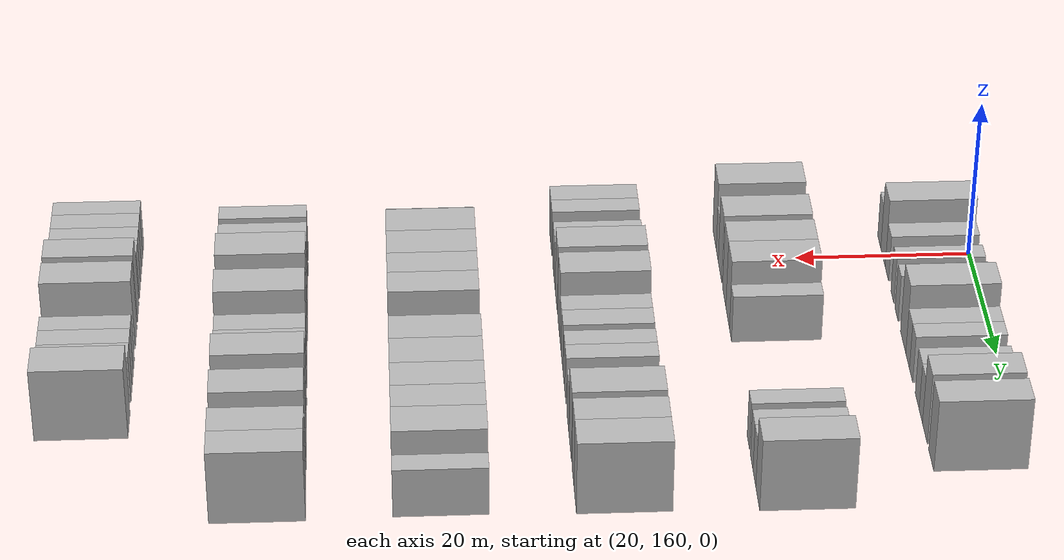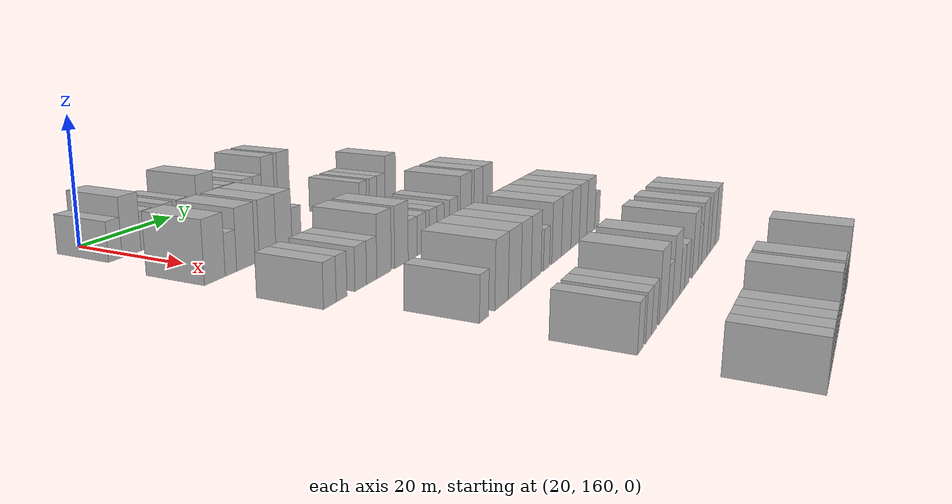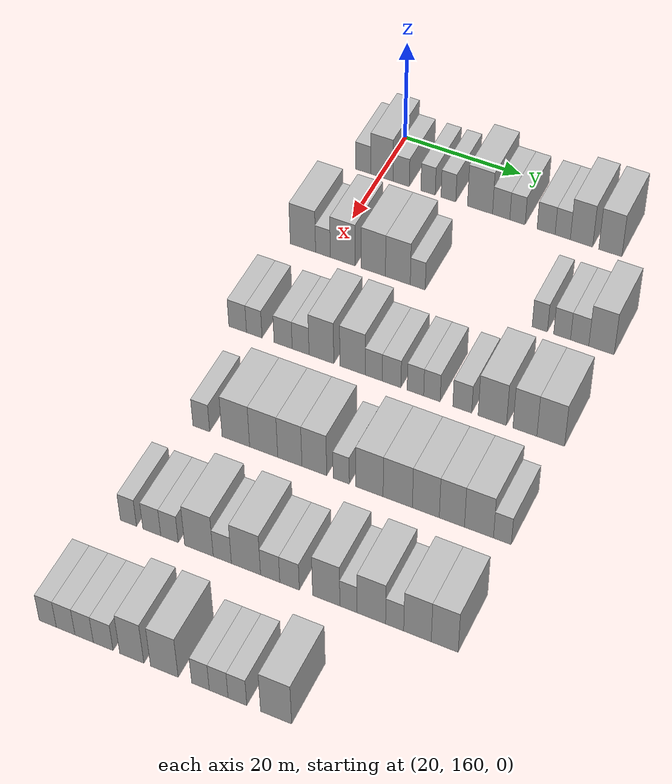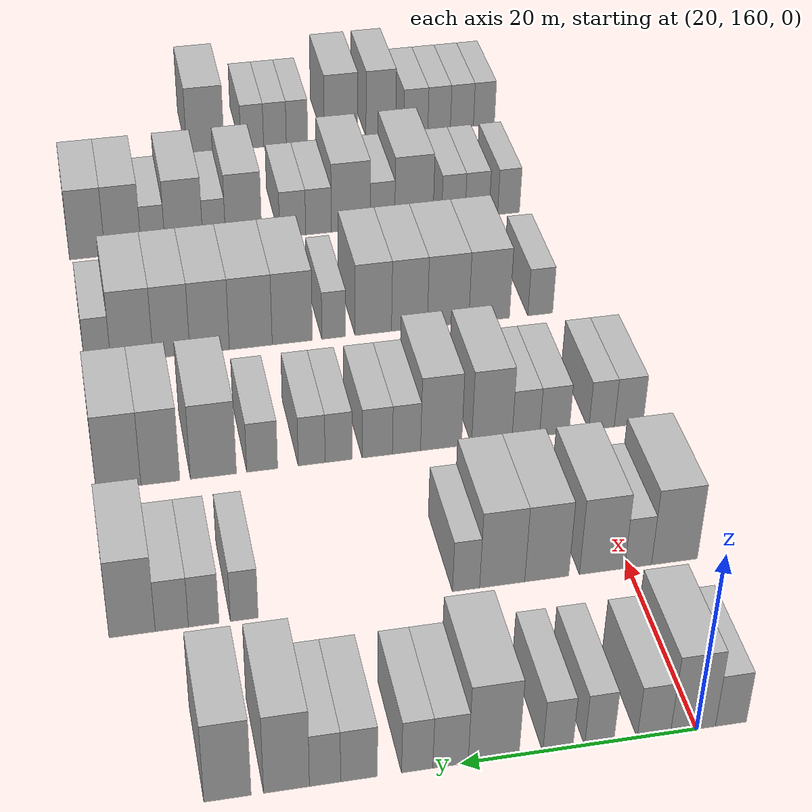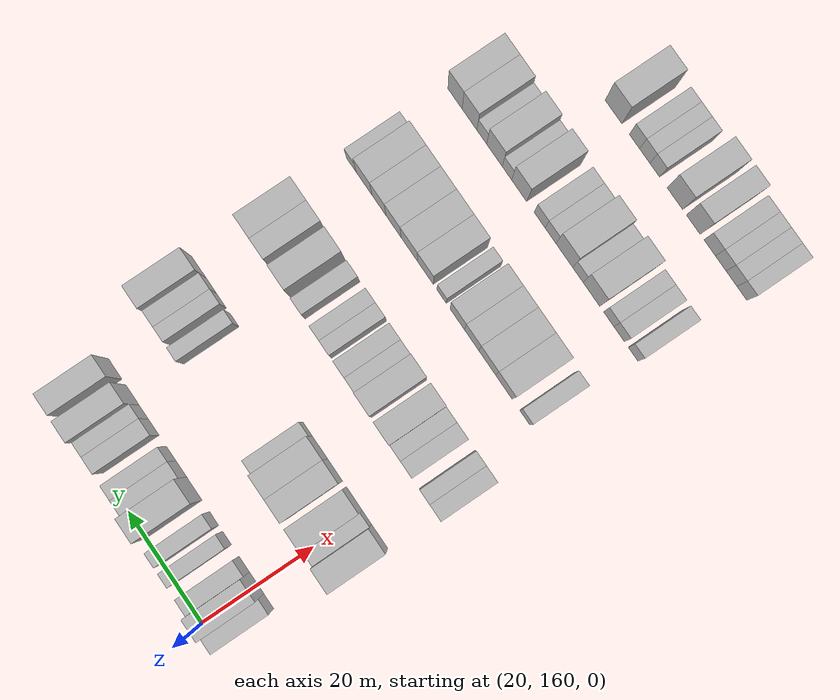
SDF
<sdf version="1.6">
 <world name="default">
  <model name="building_124">
   <static>1</static>
   <pose>25.0000 157.0940 0 0.000000 0.000000 0.000000</pose>
   <link name="link">
    <pose>0 0 3.00 0 0 0</pose>
    <collision name="collision"><geometry><box><size>10.0000 2.6790 6.0000</size></box></geometry></collision>
    <visual name="visual">
     <cast_shadows>0</cast_shadows>
     <geometry><box><size>10.0000 2.6790 6.0000</size></box></geometry>
     <material>
      <script>
       <uri>model://HANNAS_wall/materials/scripts</uri>
       <uri>model://HANNAS_wall/materials/textures</uri>
       <name>vrc/HANNAS_wall</name>
      </script>
     </material>
    </visual>
   </link>
  </model>
  <model name="building_125">
   <static>1</static>
   <pose>25.0000 160.3648 0 0.000000 0.000000 0.000000</pose>
   <link name="link">
    <pose>0 0 4.50 0 0 0</pose>
    <collision name="collision"><geometry><box><size>10.0000 3.8626 9.0000</size></box></geometry></collision>
    <visual name="visual">
     <cast_shadows>0</cast_shadows>
     <geometry><box><size>10.0000 3.8626 9.0000</size></box></geometry>
     <material>
      <script>
       <uri>model://HANNAS_wall/materials/scripts</uri>
       <uri>model://HANNAS_wall/materials/textures</uri>
       <name>vrc/HANNAS_wall</name>
      </script>
     </material>
    </visual>
   </link>
  </model>
  <model name="building_126">
   <static>1</static>
   <pose>25.0000 163.7186 0 0.000000 0.000000 0.000000</pose>
   <link name="link">
    <pose>0 0 3.00 0 0 0</pose>
    <collision name="collision"><geometry><box><size>10.0000 2.8452 6.0000</size></box></geometry></collision>
    <visual name="visual">
     <cast_shadows>0</cast_shadows>
     <geometry><box><size>10.0000 2.8452 6.0000</size></box></geometry>
     <material>
      <script>
       <uri>model://HANNAS_wall/materials/scripts</uri>
       <uri>model://HANNAS_wall/materials/textures</uri>
       <name>vrc/HANNAS_wall</name>
      </script>
     </material>
    </visual>
   </link>
  </model>
  <model name="building_127">
   <static>1</static>
   <pose>25.0000 168.3753 0 0.000000 0.000000 0.000000</pose>
   <link name="link">
    <pose>0 0 3.00 0 0 0</pose>
    <collision name="collision"><geometry><box><size>10.0000 2.4682 6.0000</size></box></geometry></collision>
    <visual name="visual">
     <cast_shadows>0</cast_shadows>
     <geometry><box><size>10.0000 2.4682 6.0000</size></box></geometry>
     <material>
      <script>
       <uri>model://HANNAS_wall/materials/scripts</uri>
       <uri>model://HANNAS_wall/materials/textures</uri>
       <name>vrc/HANNAS_wall</name>
      </script>
     </material>
    </visual>
   </link>
  </model>
  <model name="building_128">
   <static>1</static>
   <pose>25.0000 171.8741 0 0.000000 0.000000 0.000000</pose>
   <link name="link">
    <pose>0 0 3.00 0 0 0</pose>
    <collision name="collision"><geometry><box><size>10.0000 2.5295 6.0000</size></box></geometry></collision>
    <visual name="visual">
     <cast_shadows>0</cast_shadows>
     <geometry><box><size>10.0000 2.5295 6.0000</size></box></geometry>
     <material>
      <script>
       <uri>model://HANNAS_wall/materials/scripts</uri>
       <uri>model://HANNAS_wall/materials/textures</uri>
       <name>vrc/HANNAS_wall</name>
      </script>
     </material>
    </visual>
   </link>
  </model>
  <model name="building_129">
   <static>1</static>
   <pose>25.0000 177.2616 0 0.000000 0.000000 0.000000</pose>
   <link name="link">
    <pose>0 0 4.50 0 0 0</pose>
    <collision name="collision"><geometry><box><size>10.0000 4.2454 9.0000</size></box></geometry></collision>
    <visual name="visual">
     <cast_shadows>0</cast_shadows>
     <geometry><box><size>10.0000 4.2454 9.0000</size></box></geometry>
     <material>
      <script>
       <uri>model://HANNAS_wall/materials/scripts</uri>
       <uri>model://HANNAS_wall/materials/textures</uri>
       <name>vrc/HANNAS_wall</name>
      </script>
     </material>
    </visual>
   </link>
  </model>
  <model name="building_130">
   <static>1</static>
   <pose>25.0000 180.8461 0 0.000000 0.000000 0.000000</pose>
   <link name="link">
    <pose>0 0 3.00 0 0 0</pose>
    <collision name="collision"><geometry><box><size>10.0000 2.9236 6.0000</size></box></geometry></collision>
    <visual name="visual">
     <cast_shadows>0</cast_shadows>
     <geometry><box><size>10.0000 2.9236 6.0000</size></box></geometry>
     <material>
      <script>
       <uri>model://HANNAS_wall/materials/scripts</uri>
       <uri>model://HANNAS_wall/materials/textures</uri>
       <name>vrc/HANNAS_wall</name>
      </script>
     </material>
    </visual>
   </link>
  </model>
  <model name="building_131">
   <static>1</static>
   <pose>25.0000 183.5967 0 0.000000 0.000000 0.000000</pose>
   <link name="link">
    <pose>0 0 3.00 0 0 0</pose>
    <collision name="collision"><geometry><box><size>10.0000 2.5775 6.0000</size></box></geometry></collision>
    <visual name="visual">
     <cast_shadows>0</cast_shadows>
     <geometry><box><size>10.0000 2.5775 6.0000</size></box></geometry>
     <material>
      <script>
       <uri>model://HANNAS_wall/materials/scripts</uri>
       <uri>model://HANNAS_wall/materials/textures</uri>
       <name>vrc/HANNAS_wall</name>
      </script>
     </material>
    </visual>
   </link>
  </model>
  <model name="building_132">
   <static>1</static>
   <pose>25.0000 188.3840 0 0.000000 0.000000 0.000000</pose>
   <link name="link">
    <pose>0 0 3.00 0 0 0</pose>
    <collision name="collision"><geometry><box><size>10.0000 2.9971 6.0000</size></box></geometry></collision>
    <visual name="visual">
     <cast_shadows>0</cast_shadows>
     <geometry><box><size>10.0000 2.9971 6.0000</size></box></geometry>
     <material>
      <script>
       <uri>model://HANNAS_wall/materials/scripts</uri>
       <uri>model://HANNAS_wall/materials/textures</uri>
       <name>vrc/HANNAS_wall</name>
      </script>
     </material>
    </visual>
   </link>
  </model>
  <model name="building_133">
   <static>1</static>
   <pose>25.0000 191.1458 0 0.000000 0.000000 0.000000</pose>
   <link name="link">
    <pose>0 0 3.00 0 0 0</pose>
    <collision name="collision"><geometry><box><size>10.0000 2.5265 6.0000</size></box></geometry></collision>
    <visual name="visual">
     <cast_shadows>0</cast_shadows>
     <geometry><box><size>10.0000 2.5265 6.0000</size></box></geometry>
     <material>
      <script>
       <uri>model://HANNAS_wall/materials/scripts</uri>
       <uri>model://HANNAS_wall/materials/textures</uri>
       <name>vrc/HANNAS_wall</name>
      </script>
     </material>
    </visual>
   </link>
  </model>
  <model name="building_134">
   <static>1</static>
   <pose>25.0000 194.2601 0 0.000000 0.000000 0.000000</pose>
   <link name="link">
    <pose>0 0 4.50 0 0 0</pose>
    <collision name="collision"><geometry><box><size>10.0000 3.7020 9.0000</size></box></geometry></collision>
    <visual name="visual">
     <cast_shadows>0</cast_shadows>
     <geometry><box><size>10.0000 3.7020 9.0000</size></box></geometry>
     <material>
      <script>
       <uri>model://HANNAS_wall/materials/scripts</uri>
       <uri>model://HANNAS_wall/materials/textures</uri>
       <name>vrc/HANNAS_wall</name>
      </script>
     </material>
    </visual>
   </link>
  </model>
  <model name="building_135">
   <static>1</static>
   <pose>25.0000 199.0056 0 0.000000 0.000000 0.000000</pose>
   <link name="link">
    <pose>0 0 4.50 0 0 0</pose>
    <collision name="collision"><geometry><box><size>10.0000 3.7892 9.0000</size></box></geometry></collision>
    <visual name="visual">
     <cast_shadows>0</cast_shadows>
     <geometry><box><size>10.0000 3.7892 9.0000</size></box></geometry>
     <material>
      <script>
       <uri>model://HANNAS_wall/materials/scripts</uri>
       <uri>model://HANNAS_wall/materials/textures</uri>
       <name>vrc/HANNAS_wall</name>
      </script>
     </material>
    </visual>
   </link>
  </model>
  <model name="building_297">
   <static>1</static>
   <pose>44.0000 155.7396 0 0.000000 0.000000 0.000000</pose>
   <link name="link">
    <pose>0 0 4.50 0 0 0</pose>
    <collision name="collision"><geometry><box><size>10.0000 4.3315 9.0000</size></box></geometry></collision>
    <visual name="visual">
     <cast_shadows>0</cast_shadows>
     <geometry><box><size>10.0000 4.3315 9.0000</size></box></geometry>
     <material>
      <script>
       <uri>model://HANNAS_wall/materials/scripts</uri>
       <uri>model://HANNAS_wall/materials/textures</uri>
       <name>vrc/HANNAS_wall</name>
      </script>
     </material>
    </visual>
   </link>
  </model>
  <model name="building_298">
   <static>1</static>
   <pose>44.0000 159.1583 0 0.000000 0.000000 0.000000</pose>
   <link name="link">
    <pose>0 0 3.00 0 0 0</pose>
    <collision name="collision"><geometry><box><size>10.0000 2.5058 6.0000</size></box></geometry></collision>
    <visual name="visual">
     <cast_shadows>0</cast_shadows>
     <geometry><box><size>10.0000 2.5058 6.0000</size></box></geometry>
     <material>
      <script>
       <uri>model://HANNAS_wall/materials/scripts</uri>
       <uri>model://HANNAS_wall/materials/textures</uri>
       <name>vrc/HANNAS_wall</name>
      </script>
     </material>
    </visual>
   </link>
  </model>
  <model name="building_299">
   <static>1</static>
   <pose>44.0000 162.5243 0 0.000000 0.000000 0.000000</pose>
   <link name="link">
    <pose>0 0 4.50 0 0 0</pose>
    <collision name="collision"><geometry><box><size>10.0000 4.2263 9.0000</size></box></geometry></collision>
    <visual name="visual">
     <cast_shadows>0</cast_shadows>
     <geometry><box><size>10.0000 4.2263 9.0000</size></box></geometry>
     <material>
      <script>
       <uri>model://HANNAS_wall/materials/scripts</uri>
       <uri>model://HANNAS_wall/materials/textures</uri>
       <name>vrc/HANNAS_wall</name>
      </script>
     </material>
    </visual>
   </link>
  </model>
  <model name="building_300">
   <static>1</static>
   <pose>44.0000 167.6697 0 0.000000 0.000000 0.000000</pose>
   <link name="link">
    <pose>0 0 4.50 0 0 0</pose>
    <collision name="collision"><geometry><box><size>10.0000 4.0644 9.0000</size></box></geometry></collision>
    <visual name="visual">
     <cast_shadows>0</cast_shadows>
     <geometry><box><size>10.0000 4.0644 9.0000</size></box></geometry>
     <material>
      <script>
       <uri>model://HANNAS_wall/materials/scripts</uri>
       <uri>model://HANNAS_wall/materials/textures</uri>
       <name>vrc/HANNAS_wall</name>
      </script>
     </material>
    </visual>
   </link>
  </model>
  <model name="building_301">
   <static>1</static>
   <pose>44.0000 171.7736 0 0.000000 0.000000 0.000000</pose>
   <link name="link">
    <pose>0 0 4.50 0 0 0</pose>
    <collision name="collision"><geometry><box><size>10.0000 4.1435 9.0000</size></box></geometry></collision>
    <visual name="visual">
     <cast_shadows>0</cast_shadows>
     <geometry><box><size>10.0000 4.1435 9.0000</size></box></geometry>
     <material>
      <script>
       <uri>model://HANNAS_wall/materials/scripts</uri>
       <uri>model://HANNAS_wall/materials/textures</uri>
       <name>vrc/HANNAS_wall</name>
      </script>
     </material>
    </visual>
   </link>
  </model>
  <model name="building_302">
   <static>1</static>
   <pose>44.0000 175.0866 0 0.000000 0.000000 0.000000</pose>
   <link name="link">
    <pose>0 0 3.00 0 0 0</pose>
    <collision name="collision"><geometry><box><size>10.0000 2.4825 6.0000</size></box></geometry></collision>
    <visual name="visual">
     <cast_shadows>0</cast_shadows>
     <geometry><box><size>10.0000 2.4825 6.0000</size></box></geometry>
     <material>
      <script>
       <uri>model://HANNAS_wall/materials/scripts</uri>
       <uri>model://HANNAS_wall/materials/textures</uri>
       <name>vrc/HANNAS_wall</name>
      </script>
     </material>
    </visual>
   </link>
  </model>
  <model name="building_303">
   <static>1</static>
   <pose>44.0000 195.0026 0 0.000000 0.000000 0.000000</pose>
   <link name="link">
    <pose>0 0 3.00 0 0 0</pose>
    <collision name="collision"><geometry><box><size>10.0000 2.4498 6.0000</size></box></geometry></collision>
    <visual name="visual">
     <cast_shadows>0</cast_shadows>
     <geometry><box><size>10.0000 2.4498 6.0000</size></box></geometry>
     <material>
      <script>
       <uri>model://HANNAS_wall/materials/scripts</uri>
       <uri>model://HANNAS_wall/materials/textures</uri>
       <name>vrc/HANNAS_wall</name>
      </script>
     </material>
    </visual>
   </link>
  </model>
  <model name="building_304">
   <static>1</static>
   <pose>44.0000 198.5669 0 0.000000 0.000000 0.000000</pose>
   <link name="link">
    <pose>0 0 3.00 0 0 0</pose>
    <collision name="collision"><geometry><box><size>10.0000 2.6788 6.0000</size></box></geometry></collision>
    <visual name="visual">
     <cast_shadows>0</cast_shadows>
     <geometry><box><size>10.0000 2.6788 6.0000</size></box></geometry>
     <material>
      <script>
       <uri>model://HANNAS_wall/materials/scripts</uri>
       <uri>model://HANNAS_wall/materials/textures</uri>
       <name>vrc/HANNAS_wall</name>
      </script>
     </material>
    </visual>
   </link>
  </model>
  <model name="building_305">
   <static>1</static>
   <pose>44.0000 201.3552 0 0.000000 0.000000 0.000000</pose>
   <link name="link">
    <pose>0 0 3.00 0 0 0</pose>
    <collision name="collision"><geometry><box><size>10.0000 2.8977 6.0000</size></box></geometry></collision>
    <visual name="visual">
     <cast_shadows>0</cast_shadows>
     <geometry><box><size>10.0000 2.8977 6.0000</size></box></geometry>
     <material>
      <script>
       <uri>model://HANNAS_wall/materials/scripts</uri>
       <uri>model://HANNAS_wall/materials/textures</uri>
       <name>vrc/HANNAS_wall</name>
      </script>
     </material>
    </visual>
   </link>
  </model>
  <model name="building_306">
   <static>1</static>
   <pose>44.0000 204.8110 0 0.000000 0.000000 0.000000</pose>
   <link name="link">
    <pose>0 0 4.50 0 0 0</pose>
    <collision name="collision"><geometry><box><size>10.0000 4.0140 9.0000</size></box></geometry></collision>
    <visual name="visual">
     <cast_shadows>0</cast_shadows>
     <geometry><box><size>10.0000 4.0140 9.0000</size></box></geometry>
     <material>
      <script>
       <uri>model://HANNAS_wall/materials/scripts</uri>
       <uri>model://HANNAS_wall/materials/textures</uri>
       <name>vrc/HANNAS_wall</name>
      </script>
     </material>
    </visual>
   </link>
  </model>
  <model name="building_469">
   <static>1</static>
   <pose>63.0000 154.2021 0 0.000000 0.000000 0.000000</pose>
   <link name="link">
    <pose>0 0 3.00 0 0 0</pose>
    <collision name="collision"><geometry><box><size>10.0000 2.9419 6.0000</size></box></geometry></collision>
    <visual name="visual">
     <cast_shadows>0</cast_shadows>
     <geometry><box><size>10.0000 2.9419 6.0000</size></box></geometry>
     <material>
      <script>
       <uri>model://HANNAS_wall/materials/scripts</uri>
       <uri>model://HANNAS_wall/materials/textures</uri>
       <name>vrc/HANNAS_wall</name>
      </script>
     </material>
    </visual>
   </link>
  </model>
  <model name="building_470">
   <static>1</static>
   <pose>63.0000 156.9683 0 0.000000 0.000000 0.000000</pose>
   <link name="link">
    <pose>0 0 3.00 0 0 0</pose>
    <collision name="collision"><geometry><box><size>10.0000 2.5905 6.0000</size></box></geometry></collision>
    <visual name="visual">
     <cast_shadows>0</cast_shadows>
     <geometry><box><size>10.0000 2.5905 6.0000</size></box></geometry>
     <material>
      <script>
       <uri>model://HANNAS_wall/materials/scripts</uri>
       <uri>model://HANNAS_wall/materials/textures</uri>
       <name>vrc/HANNAS_wall</name>
      </script>
     </material>
    </visual>
   </link>
  </model>
  <model name="building_471">
   <static>1</static>
   <pose>63.0000 161.7582 0 0.000000 0.000000 0.000000</pose>
   <link name="link">
    <pose>0 0 3.00 0 0 0</pose>
    <collision name="collision"><geometry><box><size>10.0000 2.9892 6.0000</size></box></geometry></collision>
    <visual name="visual">
     <cast_shadows>0</cast_shadows>
     <geometry><box><size>10.0000 2.9892 6.0000</size></box></geometry>
     <material>
      <script>
       <uri>model://HANNAS_wall/materials/scripts</uri>
       <uri>model://HANNAS_wall/materials/textures</uri>
       <name>vrc/HANNAS_wall</name>
      </script>
     </material>
    </visual>
   </link>
  </model>
  <model name="building_472">
   <static>1</static>
   <pose>63.0000 164.6379 0 0.000000 0.000000 0.000000</pose>
   <link name="link">
    <pose>0 0 3.00 0 0 0</pose>
    <collision name="collision"><geometry><box><size>10.0000 2.7702 6.0000</size></box></geometry></collision>
    <visual name="visual">
     <cast_shadows>0</cast_shadows>
     <geometry><box><size>10.0000 2.7702 6.0000</size></box></geometry>
     <material>
      <script>
       <uri>model://HANNAS_wall/materials/scripts</uri>
       <uri>model://HANNAS_wall/materials/textures</uri>
       <name>vrc/HANNAS_wall</name>
      </script>
     </material>
    </visual>
   </link>
  </model>
  <model name="building_473">
   <static>1</static>
   <pose>63.0000 168.0458 0 0.000000 0.000000 0.000000</pose>
   <link name="link">
    <pose>0 0 4.50 0 0 0</pose>
    <collision name="collision"><geometry><box><size>10.0000 4.0457 9.0000</size></box></geometry></collision>
    <visual name="visual">
     <cast_shadows>0</cast_shadows>
     <geometry><box><size>10.0000 4.0457 9.0000</size></box></geometry>
     <material>
      <script>
       <uri>model://HANNAS_wall/materials/scripts</uri>
       <uri>model://HANNAS_wall/materials/textures</uri>
       <name>vrc/HANNAS_wall</name>
      </script>
     </material>
    </visual>
   </link>
  </model>
  <model name="building_474">
   <static>1</static>
   <pose>63.0000 173.1071 0 0.000000 0.000000 0.000000</pose>
   <link name="link">
    <pose>0 0 4.50 0 0 0</pose>
    <collision name="collision"><geometry><box><size>10.0000 4.0769 9.0000</size></box></geometry></collision>
    <visual name="visual">
     <cast_shadows>0</cast_shadows>
     <geometry><box><size>10.0000 4.0769 9.0000</size></box></geometry>
     <material>
      <script>
       <uri>model://HANNAS_wall/materials/scripts</uri>
       <uri>model://HANNAS_wall/materials/textures</uri>
       <name>vrc/HANNAS_wall</name>
      </script>
     </material>
    </visual>
   </link>
  </model>
  <model name="building_475">
   <static>1</static>
   <pose>63.0000 176.5319 0 0.000000 0.000000 0.000000</pose>
   <link name="link">
    <pose>0 0 3.00 0 0 0</pose>
    <collision name="collision"><geometry><box><size>10.0000 2.7725 6.0000</size></box></geometry></collision>
    <visual name="visual">
     <cast_shadows>0</cast_shadows>
     <geometry><box><size>10.0000 2.7725 6.0000</size></box></geometry>
     <material>
      <script>
       <uri>model://HANNAS_wall/materials/scripts</uri>
       <uri>model://HANNAS_wall/materials/textures</uri>
       <name>vrc/HANNAS_wall</name>
      </script>
     </material>
    </visual>
   </link>
  </model>
  <model name="building_476">
   <static>1</static>
   <pose>63.0000 179.4062 0 0.000000 0.000000 0.000000</pose>
   <link name="link">
    <pose>0 0 3.00 0 0 0</pose>
    <collision name="collision"><geometry><box><size>10.0000 2.9761 6.0000</size></box></geometry></collision>
    <visual name="visual">
     <cast_shadows>0</cast_shadows>
     <geometry><box><size>10.0000 2.9761 6.0000</size></box></geometry>
     <material>
      <script>
       <uri>model://HANNAS_wall/materials/scripts</uri>
       <uri>model://HANNAS_wall/materials/textures</uri>
       <name>vrc/HANNAS_wall</name>
      </script>
     </material>
    </visual>
   </link>
  </model>
  <model name="building_477">
   <static>1</static>
   <pose>63.0000 183.2064 0 0.000000 0.000000 0.000000</pose>
   <link name="link">
    <pose>0 0 3.00 0 0 0</pose>
    <collision name="collision"><geometry><box><size>10.0000 2.6243 6.0000</size></box></geometry></collision>
    <visual name="visual">
     <cast_shadows>0</cast_shadows>
     <geometry><box><size>10.0000 2.6243 6.0000</size></box></geometry>
     <material>
      <script>
       <uri>model://HANNAS_wall/materials/scripts</uri>
       <uri>model://HANNAS_wall/materials/textures</uri>
       <name>vrc/HANNAS_wall</name>
      </script>
     </material>
    </visual>
   </link>
  </model>
  <model name="building_478">
   <static>1</static>
   <pose>63.0000 185.8227 0 0.000000 0.000000 0.000000</pose>
   <link name="link">
    <pose>0 0 3.00 0 0 0</pose>
    <collision name="collision"><geometry><box><size>10.0000 2.6082 6.0000</size></box></geometry></collision>
    <visual name="visual">
     <cast_shadows>0</cast_shadows>
     <geometry><box><size>10.0000 2.6082 6.0000</size></box></geometry>
     <material>
      <script>
       <uri>model://HANNAS_wall/materials/scripts</uri>
       <uri>model://HANNAS_wall/materials/textures</uri>
       <name>vrc/HANNAS_wall</name>
      </script>
     </material>
    </visual>
   </link>
  </model>
  <model name="building_479">
   <static>1</static>
   <pose>63.0000 190.6145 0 0.000000 0.000000 0.000000</pose>
   <link name="link">
    <pose>0 0 3.00 0 0 0</pose>
    <collision name="collision"><geometry><box><size>10.0000 2.9754 6.0000</size></box></geometry></collision>
    <visual name="visual">
     <cast_shadows>0</cast_shadows>
     <geometry><box><size>10.0000 2.9754 6.0000</size></box></geometry>
     <material>
      <script>
       <uri>model://HANNAS_wall/materials/scripts</uri>
       <uri>model://HANNAS_wall/materials/textures</uri>
       <name>vrc/HANNAS_wall</name>
      </script>
     </material>
    </visual>
   </link>
  </model>
  <model name="building_480">
   <static>1</static>
   <pose>63.0000 195.3087 0 0.000000 0.000000 0.000000</pose>
   <link name="link">
    <pose>0 0 4.50 0 0 0</pose>
    <collision name="collision"><geometry><box><size>10.0000 4.4129 9.0000</size></box></geometry></collision>
    <visual name="visual">
     <cast_shadows>0</cast_shadows>
     <geometry><box><size>10.0000 4.4129 9.0000</size></box></geometry>
     <material>
      <script>
       <uri>model://HANNAS_wall/materials/scripts</uri>
       <uri>model://HANNAS_wall/materials/textures</uri>
       <name>vrc/HANNAS_wall</name>
      </script>
     </material>
    </visual>
   </link>
  </model>
  <model name="building_481">
   <static>1</static>
   <pose>63.0000 200.3666 0 0.000000 0.000000 0.000000</pose>
   <link name="link">
    <pose>0 0 4.50 0 0 0</pose>
    <collision name="collision"><geometry><box><size>10.0000 3.7028 9.0000</size></box></geometry></collision>
    <visual name="visual">
     <cast_shadows>0</cast_shadows>
     <geometry><box><size>10.0000 3.7028 9.0000</size></box></geometry>
     <material>
      <script>
       <uri>model://HANNAS_wall/materials/scripts</uri>
       <uri>model://HANNAS_wall/materials/textures</uri>
       <name>vrc/HANNAS_wall</name>
      </script>
     </material>
    </visual>
   </link>
  </model>
  <model name="building_482">
   <static>1</static>
   <pose>63.0000 204.3423 0 0.000000 0.000000 0.000000</pose>
   <link name="link">
    <pose>0 0 4.50 0 0 0</pose>
    <collision name="collision"><geometry><box><size>10.0000 4.2485 9.0000</size></box></geometry></collision>
    <visual name="visual">
     <cast_shadows>0</cast_shadows>
     <geometry><box><size>10.0000 4.2485 9.0000</size></box></geometry>
     <material>
      <script>
       <uri>model://HANNAS_wall/materials/scripts</uri>
       <uri>model://HANNAS_wall/materials/textures</uri>
       <name>vrc/HANNAS_wall</name>
      </script>
     </material>
    </visual>
   </link>
  </model>
  <model name="building_628">
   <static>1</static>
   <pose>82.0000 158.0994 0 0.000000 0.000000 0.000000</pose>
   <link name="link">
    <pose>0 0 3.00 0 0 0</pose>
    <collision name="collision"><geometry><box><size>10.0000 2.7022 6.0000</size></box></geometry></collision>
    <visual name="visual">
     <cast_shadows>0</cast_shadows>
     <geometry><box><size>10.0000 2.7022 6.0000</size></box></geometry>
     <material>
      <script>
       <uri>model://HANNAS_wall/materials/scripts</uri>
       <uri>model://HANNAS_wall/materials/textures</uri>
       <name>vrc/HANNAS_wall</name>
      </script>
     </material>
    </visual>
   </link>
  </model>
  <model name="building_629">
   <static>1</static>
   <pose>82.0000 163.6558 0 0.000000 0.000000 0.000000</pose>
   <link name="link">
    <pose>0 0 4.50 0 0 0</pose>
    <collision name="collision"><geometry><box><size>10.0000 4.4106 9.0000</size></box></geometry></collision>
    <visual name="visual">
     <cast_shadows>0</cast_shadows>
     <geometry><box><size>10.0000 4.4106 9.0000</size></box></geometry>
     <material>
      <script>
       <uri>model://HANNAS_wall/materials/scripts</uri>
       <uri>model://HANNAS_wall/materials/textures</uri>
       <name>vrc/HANNAS_wall</name>
      </script>
     </material>
    </visual>
   </link>
  </model>
  <model name="building_630">
   <static>1</static>
   <pose>82.0000 168.0950 0 0.000000 0.000000 0.000000</pose>
   <link name="link">
    <pose>0 0 4.50 0 0 0</pose>
    <collision name="collision"><geometry><box><size>10.0000 4.4678 9.0000</size></box></geometry></collision>
    <visual name="visual">
     <cast_shadows>0</cast_shadows>
     <geometry><box><size>10.0000 4.4678 9.0000</size></box></geometry>
     <material>
      <script>
       <uri>model://HANNAS_wall/materials/scripts</uri>
       <uri>model://HANNAS_wall/materials/textures</uri>
       <name>vrc/HANNAS_wall</name>
      </script>
     </material>
    </visual>
   </link>
  </model>
  <model name="building_631">
   <static>1</static>
   <pose>82.0000 172.2411 0 0.000000 0.000000 0.000000</pose>
   <link name="link">
    <pose>0 0 4.50 0 0 0</pose>
    <collision name="collision"><geometry><box><size>10.0000 3.8244 9.0000</size></box></geometry></collision>
    <visual name="visual">
     <cast_shadows>0</cast_shadows>
     <geometry><box><size>10.0000 3.8244 9.0000</size></box></geometry>
     <material>
      <script>
       <uri>model://HANNAS_wall/materials/scripts</uri>
       <uri>model://HANNAS_wall/materials/textures</uri>
       <name>vrc/HANNAS_wall</name>
      </script>
     </material>
    </visual>
   </link>
  </model>
  <model name="building_632">
   <static>1</static>
   <pose>82.0000 176.0911 0 0.000000 0.000000 0.000000</pose>
   <link name="link">
    <pose>0 0 4.50 0 0 0</pose>
    <collision name="collision"><geometry><box><size>10.0000 3.8755 9.0000</size></box></geometry></collision>
    <visual name="visual">
     <cast_shadows>0</cast_shadows>
     <geometry><box><size>10.0000 3.8755 9.0000</size></box></geometry>
     <material>
      <script>
       <uri>model://HANNAS_wall/materials/scripts</uri>
       <uri>model://HANNAS_wall/materials/textures</uri>
       <name>vrc/HANNAS_wall</name>
      </script>
     </material>
    </visual>
   </link>
  </model>
  <model name="building_633">
   <static>1</static>
   <pose>82.0000 180.2883 0 0.000000 0.000000 0.000000</pose>
   <link name="link">
    <pose>0 0 3.00 0 0 0</pose>
    <collision name="collision"><geometry><box><size>10.0000 2.5191 6.0000</size></box></geometry></collision>
    <visual name="visual">
     <cast_shadows>0</cast_shadows>
     <geometry><box><size>10.0000 2.5191 6.0000</size></box></geometry>
     <material>
      <script>
       <uri>model://HANNAS_wall/materials/scripts</uri>
       <uri>model://HANNAS_wall/materials/textures</uri>
       <name>vrc/HANNAS_wall</name>
      </script>
     </material>
    </visual>
   </link>
  </model>
  <model name="building_634">
   <static>1</static>
   <pose>82.0000 184.6544 0 0.000000 0.000000 0.000000</pose>
   <link name="link">
    <pose>0 0 4.50 0 0 0</pose>
    <collision name="collision"><geometry><box><size>10.0000 4.2131 9.0000</size></box></geometry></collision>
    <visual name="visual">
     <cast_shadows>0</cast_shadows>
     <geometry><box><size>10.0000 4.2131 9.0000</size></box></geometry>
     <material>
      <script>
       <uri>model://HANNAS_wall/materials/scripts</uri>
       <uri>model://HANNAS_wall/materials/textures</uri>
       <name>vrc/HANNAS_wall</name>
      </script>
     </material>
    </visual>
   </link>
  </model>
  <model name="building_635">
   <static>1</static>
   <pose>82.0000 189.0002 0 0.000000 0.000000 0.000000</pose>
   <link name="link">
    <pose>0 0 4.50 0 0 0</pose>
    <collision name="collision"><geometry><box><size>10.0000 4.4784 9.0000</size></box></geometry></collision>
    <visual name="visual">
     <cast_shadows>0</cast_shadows>
     <geometry><box><size>10.0000 4.4784 9.0000</size></box></geometry>
     <material>
      <script>
       <uri>model://HANNAS_wall/materials/scripts</uri>
       <uri>model://HANNAS_wall/materials/textures</uri>
       <name>vrc/HANNAS_wall</name>
      </script>
     </material>
    </visual>
   </link>
  </model>
  <model name="building_636">
   <static>1</static>
   <pose>82.0000 193.2841 0 0.000000 0.000000 0.000000</pose>
   <link name="link">
    <pose>0 0 4.50 0 0 0</pose>
    <collision name="collision"><geometry><box><size>10.0000 4.0894 9.0000</size></box></geometry></collision>
    <visual name="visual">
     <cast_shadows>0</cast_shadows>
     <geometry><box><size>10.0000 4.0894 9.0000</size></box></geometry>
     <material>
      <script>
       <uri>model://HANNAS_wall/materials/scripts</uri>
       <uri>model://HANNAS_wall/materials/textures</uri>
       <name>vrc/HANNAS_wall</name>
      </script>
     </material>
    </visual>
   </link>
  </model>
  <model name="building_637">
   <static>1</static>
   <pose>82.0000 197.2275 0 0.000000 0.000000 0.000000</pose>
   <link name="link">
    <pose>0 0 4.50 0 0 0</pose>
    <collision name="collision"><geometry><box><size>10.0000 3.7975 9.0000</size></box></geometry></collision>
    <visual name="visual">
     <cast_shadows>0</cast_shadows>
     <geometry><box><size>10.0000 3.7975 9.0000</size></box></geometry>
     <material>
      <script>
       <uri>model://HANNAS_wall/materials/scripts</uri>
       <uri>model://HANNAS_wall/materials/textures</uri>
       <name>vrc/HANNAS_wall</name>
      </script>
     </material>
    </visual>
   </link>
  </model>
  <model name="building_638">
   <static>1</static>
   <pose>82.0000 201.2980 0 0.000000 0.000000 0.000000</pose>
   <link name="link">
    <pose>0 0 4.50 0 0 0</pose>
    <collision name="collision"><geometry><box><size>10.0000 4.3434 9.0000</size></box></geometry></collision>
    <visual name="visual">
     <cast_shadows>0</cast_shadows>
     <geometry><box><size>10.0000 4.3434 9.0000</size></box></geometry>
     <material>
      <script>
       <uri>model://HANNAS_wall/materials/scripts</uri>
       <uri>model://HANNAS_wall/materials/textures</uri>
       <name>vrc/HANNAS_wall</name>
      </script>
     </material>
    </visual>
   </link>
  </model>
  <model name="building_639">
   <static>1</static>
   <pose>82.0000 204.8005 0 0.000000 0.000000 0.000000</pose>
   <link name="link">
    <pose>0 0 3.00 0 0 0</pose>
    <collision name="collision"><geometry><box><size>10.0000 2.6615 6.0000</size></box></geometry></collision>
    <visual name="visual">
     <cast_shadows>0</cast_shadows>
     <geometry><box><size>10.0000 2.6615 6.0000</size></box></geometry>
     <material>
      <script>
       <uri>model://HANNAS_wall/materials/scripts</uri>
       <uri>model://HANNAS_wall/materials/textures</uri>
       <name>vrc/HANNAS_wall</name>
      </script>
     </material>
    </visual>
   </link>
  </model>
  <model name="building_788">
   <static>1</static>
   <pose>101.0000 156.7307 0 0.000000 0.000000 0.000000</pose>
   <link name="link">
    <pose>0 0 3.00 0 0 0</pose>
    <collision name="collision"><geometry><box><size>10.0000 2.5454 6.0000</size></box></geometry></collision>
    <visual name="visual">
     <cast_shadows>0</cast_shadows>
     <geometry><box><size>10.0000 2.5454 6.0000</size></box></geometry>
     <material>
      <script>
       <uri>model://HANNAS_wall/materials/scripts</uri>
       <uri>model://HANNAS_wall/materials/textures</uri>
       <name>vrc/HANNAS_wall</name>
      </script>
     </material>
    </visual>
   </link>
  </model>
  <model name="building_789">
   <static>1</static>
   <pose>101.0000 160.4040 0 0.000000 0.000000 0.000000</pose>
   <link name="link">
    <pose>0 0 3.00 0 0 0</pose>
    <collision name="collision"><geometry><box><size>10.0000 2.8012 6.0000</size></box></geometry></collision>
    <visual name="visual">
     <cast_shadows>0</cast_shadows>
     <geometry><box><size>10.0000 2.8012 6.0000</size></box></geometry>
     <material>
      <script>
       <uri>model://HANNAS_wall/materials/scripts</uri>
       <uri>model://HANNAS_wall/materials/textures</uri>
       <name>vrc/HANNAS_wall</name>
      </script>
     </material>
    </visual>
   </link>
  </model>
  <model name="building_790">
   <static>1</static>
   <pose>101.0000 163.1675 0 0.000000 0.000000 0.000000</pose>
   <link name="link">
    <pose>0 0 3.00 0 0 0</pose>
    <collision name="collision"><geometry><box><size>10.0000 2.7259 6.0000</size></box></geometry></collision>
    <visual name="visual">
     <cast_shadows>0</cast_shadows>
     <geometry><box><size>10.0000 2.7259 6.0000</size></box></geometry>
     <material>
      <script>
       <uri>model://HANNAS_wall/materials/scripts</uri>
       <uri>model://HANNAS_wall/materials/textures</uri>
       <name>vrc/HANNAS_wall</name>
      </script>
     </material>
    </visual>
   </link>
  </model>
  <model name="building_791">
   <static>1</static>
   <pose>101.0000 167.7393 0 0.000000 0.000000 0.000000</pose>
   <link name="link">
    <pose>0 0 4.50 0 0 0</pose>
    <collision name="collision"><geometry><box><size>10.0000 4.4176 9.0000</size></box></geometry></collision>
    <visual name="visual">
     <cast_shadows>0</cast_shadows>
     <geometry><box><size>10.0000 4.4176 9.0000</size></box></geometry>
     <material>
      <script>
       <uri>model://HANNAS_wall/materials/scripts</uri>
       <uri>model://HANNAS_wall/materials/textures</uri>
       <name>vrc/HANNAS_wall</name>
      </script>
     </material>
    </visual>
   </link>
  </model>
  <model name="building_792">
   <static>1</static>
   <pose>101.0000 171.3455 0 0.000000 0.000000 0.000000</pose>
   <link name="link">
    <pose>0 0 3.00 0 0 0</pose>
    <collision name="collision"><geometry><box><size>10.0000 2.7949 6.0000</size></box></geometry></collision>
    <visual name="visual">
     <cast_shadows>0</cast_shadows>
     <geometry><box><size>10.0000 2.7949 6.0000</size></box></geometry>
     <material>
      <script>
       <uri>model://HANNAS_wall/materials/scripts</uri>
       <uri>model://HANNAS_wall/materials/textures</uri>
       <name>vrc/HANNAS_wall</name>
      </script>
     </material>
    </visual>
   </link>
  </model>
  <model name="building_793">
   <static>1</static>
   <pose>101.0000 174.9653 0 0.000000 0.000000 0.000000</pose>
   <link name="link">
    <pose>0 0 4.50 0 0 0</pose>
    <collision name="collision"><geometry><box><size>10.0000 4.4446 9.0000</size></box></geometry></collision>
    <visual name="visual">
     <cast_shadows>0</cast_shadows>
     <geometry><box><size>10.0000 4.4446 9.0000</size></box></geometry>
     <material>
      <script>
       <uri>model://HANNAS_wall/materials/scripts</uri>
       <uri>model://HANNAS_wall/materials/textures</uri>
       <name>vrc/HANNAS_wall</name>
      </script>
     </material>
    </visual>
   </link>
  </model>
  <model name="building_794">
   <static>1</static>
   <pose>101.0000 178.6452 0 0.000000 0.000000 0.000000</pose>
   <link name="link">
    <pose>0 0 3.00 0 0 0</pose>
    <collision name="collision"><geometry><box><size>10.0000 2.9151 6.0000</size></box></geometry></collision>
    <visual name="visual">
     <cast_shadows>0</cast_shadows>
     <geometry><box><size>10.0000 2.9151 6.0000</size></box></geometry>
     <material>
      <script>
       <uri>model://HANNAS_wall/materials/scripts</uri>
       <uri>model://HANNAS_wall/materials/textures</uri>
       <name>vrc/HANNAS_wall</name>
      </script>
     </material>
    </visual>
   </link>
  </model>
  <model name="building_795">
   <static>1</static>
   <pose>101.0000 181.5739 0 0.000000 0.000000 0.000000</pose>
   <link name="link">
    <pose>0 0 3.00 0 0 0</pose>
    <collision name="collision"><geometry><box><size>10.0000 2.9424 6.0000</size></box></geometry></collision>
    <visual name="visual">
     <cast_shadows>0</cast_shadows>
     <geometry><box><size>10.0000 2.9424 6.0000</size></box></geometry>
     <material>
      <script>
       <uri>model://HANNAS_wall/materials/scripts</uri>
       <uri>model://HANNAS_wall/materials/textures</uri>
       <name>vrc/HANNAS_wall</name>
      </script>
     </material>
    </visual>
   </link>
  </model>
  <model name="building_796">
   <static>1</static>
   <pose>101.0000 187.0739 0 0.000000 0.000000 0.000000</pose>
   <link name="link">
    <pose>0 0 4.50 0 0 0</pose>
    <collision name="collision"><geometry><box><size>10.0000 4.0576 9.0000</size></box></geometry></collision>
    <visual name="visual">
     <cast_shadows>0</cast_shadows>
     <geometry><box><size>10.0000 4.0576 9.0000</size></box></geometry>
     <material>
      <script>
       <uri>model://HANNAS_wall/materials/scripts</uri>
       <uri>model://HANNAS_wall/materials/textures</uri>
       <name>vrc/HANNAS_wall</name>
      </script>
     </material>
    </visual>
   </link>
  </model>
  <model name="building_797">
   <static>1</static>
   <pose>101.0000 190.3752 0 0.000000 0.000000 0.000000</pose>
   <link name="link">
    <pose>0 0 3.00 0 0 0</pose>
    <collision name="collision"><geometry><box><size>10.0000 2.5448 6.0000</size></box></geometry></collision>
    <visual name="visual">
     <cast_shadows>0</cast_shadows>
     <geometry><box><size>10.0000 2.5448 6.0000</size></box></geometry>
     <material>
      <script>
       <uri>model://HANNAS_wall/materials/scripts</uri>
       <uri>model://HANNAS_wall/materials/textures</uri>
       <name>vrc/HANNAS_wall</name>
      </script>
     </material>
    </visual>
   </link>
  </model>
  <model name="building_798">
   <static>1</static>
   <pose>101.0000 193.7485 0 0.000000 0.000000 0.000000</pose>
   <link name="link">
    <pose>0 0 4.50 0 0 0</pose>
    <collision name="collision"><geometry><box><size>10.0000 4.2018 9.0000</size></box></geometry></collision>
    <visual name="visual">
     <cast_shadows>0</cast_shadows>
     <geometry><box><size>10.0000 4.2018 9.0000</size></box></geometry>
     <material>
      <script>
       <uri>model://HANNAS_wall/materials/scripts</uri>
       <uri>model://HANNAS_wall/materials/textures</uri>
       <name>vrc/HANNAS_wall</name>
      </script>
     </material>
    </visual>
   </link>
  </model>
  <model name="building_799">
   <static>1</static>
   <pose>101.0000 197.1739 0 0.000000 0.000000 0.000000</pose>
   <link name="link">
    <pose>0 0 3.00 0 0 0</pose>
    <collision name="collision"><geometry><box><size>10.0000 2.6491 6.0000</size></box></geometry></collision>
    <visual name="visual">
     <cast_shadows>0</cast_shadows>
     <geometry><box><size>10.0000 2.6491 6.0000</size></box></geometry>
     <material>
      <script>
       <uri>model://HANNAS_wall/materials/scripts</uri>
       <uri>model://HANNAS_wall/materials/textures</uri>
       <name>vrc/HANNAS_wall</name>
      </script>
     </material>
    </visual>
   </link>
  </model>
  <model name="building_800">
   <static>1</static>
   <pose>101.0000 200.5018 0 0.000000 0.000000 0.000000</pose>
   <link name="link">
    <pose>0 0 4.50 0 0 0</pose>
    <collision name="collision"><geometry><box><size>10.0000 4.0067 9.0000</size></box></geometry></collision>
    <visual name="visual">
     <cast_shadows>0</cast_shadows>
     <geometry><box><size>10.0000 4.0067 9.0000</size></box></geometry>
     <material>
      <script>
       <uri>model://HANNAS_wall/materials/scripts</uri>
       <uri>model://HANNAS_wall/materials/textures</uri>
       <name>vrc/HANNAS_wall</name>
      </script>
     </material>
    </visual>
   </link>
  </model>
  <model name="building_801">
   <static>1</static>
   <pose>101.0000 204.4515 0 0.000000 0.000000 0.000000</pose>
   <link name="link">
    <pose>0 0 4.50 0 0 0</pose>
    <collision name="collision"><geometry><box><size>10.0000 3.8925 9.0000</size></box></geometry></collision>
    <visual name="visual">
     <cast_shadows>0</cast_shadows>
     <geometry><box><size>10.0000 3.8925 9.0000</size></box></geometry>
     <material>
      <script>
       <uri>model://HANNAS_wall/materials/scripts</uri>
       <uri>model://HANNAS_wall/materials/textures</uri>
       <name>vrc/HANNAS_wall</name>
      </script>
     </material>
    </visual>
   </link>
  </model>
  <model name="building_969">
   <static>1</static>
   <pose>120.0000 154.9952 0 0.000000 0.000000 0.000000</pose>
   <link name="link">
    <pose>0 0 3.00 0 0 0</pose>
    <collision name="collision"><geometry><box><size>10.0000 2.6195 6.0000</size></box></geometry></collision>
    <visual name="visual">
     <cast_shadows>0</cast_shadows>
     <geometry><box><size>10.0000 2.6195 6.0000</size></box></geometry>
     <material>
      <script>
       <uri>model://HANNAS_wall/materials/scripts</uri>
       <uri>model://HANNAS_wall/materials/textures</uri>
       <name>vrc/HANNAS_wall</name>
      </script>
     </material>
    </visual>
   </link>
  </model>
  <model name="building_970">
   <static>1</static>
   <pose>120.0000 157.7360 0 0.000000 0.000000 0.000000</pose>
   <link name="link">
    <pose>0 0 3.00 0 0 0</pose>
    <collision name="collision"><geometry><box><size>10.0000 2.8622 6.0000</size></box></geometry></collision>
    <visual name="visual">
     <cast_shadows>0</cast_shadows>
     <geometry><box><size>10.0000 2.8622 6.0000</size></box></geometry>
     <material>
      <script>
       <uri>model://HANNAS_wall/materials/scripts</uri>
       <uri>model://HANNAS_wall/materials/textures</uri>
       <name>vrc/HANNAS_wall</name>
      </script>
     </material>
    </visual>
   </link>
  </model>
  <model name="building_971">
   <static>1</static>
   <pose>120.0000 160.5662 0 0.000000 0.000000 0.000000</pose>
   <link name="link">
    <pose>0 0 3.00 0 0 0</pose>
    <collision name="collision"><geometry><box><size>10.0000 2.7982 6.0000</size></box></geometry></collision>
    <visual name="visual">
     <cast_shadows>0</cast_shadows>
     <geometry><box><size>10.0000 2.7982 6.0000</size></box></geometry>
     <material>
      <script>
       <uri>model://HANNAS_wall/materials/scripts</uri>
       <uri>model://HANNAS_wall/materials/textures</uri>
       <name>vrc/HANNAS_wall</name>
      </script>
     </material>
    </visual>
   </link>
  </model>
  <model name="building_972">
   <static>1</static>
   <pose>120.0000 163.4635 0 0.000000 0.000000 0.000000</pose>
   <link name="link">
    <pose>0 0 3.00 0 0 0</pose>
    <collision name="collision"><geometry><box><size>10.0000 2.9964 6.0000</size></box></geometry></collision>
    <visual name="visual">
     <cast_shadows>0</cast_shadows>
     <geometry><box><size>10.0000 2.9964 6.0000</size></box></geometry>
     <material>
      <script>
       <uri>model://HANNAS_wall/materials/scripts</uri>
       <uri>model://HANNAS_wall/materials/textures</uri>
       <name>vrc/HANNAS_wall</name>
      </script>
     </material>
    </visual>
   </link>
  </model>
  <model name="building_973">
   <static>1</static>
   <pose>120.0000 167.7774 0 0.000000 0.000000 0.000000</pose>
   <link name="link">
    <pose>0 0 4.50 0 0 0</pose>
    <collision name="collision"><geometry><box><size>10.0000 3.6314 9.0000</size></box></geometry></collision>
    <visual name="visual">
     <cast_shadows>0</cast_shadows>
     <geometry><box><size>10.0000 3.6314 9.0000</size></box></geometry>
     <material>
      <script>
       <uri>model://HANNAS_wall/materials/scripts</uri>
       <uri>model://HANNAS_wall/materials/textures</uri>
       <name>vrc/HANNAS_wall</name>
      </script>
     </material>
    </visual>
   </link>
  </model>
  <model name="building_974">
   <static>1</static>
   <pose>120.0000 172.6493 0 0.000000 0.000000 0.000000</pose>
   <link name="link">
    <pose>0 0 4.50 0 0 0</pose>
    <collision name="collision"><geometry><box><size>10.0000 4.1124 9.0000</size></box></geometry></collision>
    <visual name="visual">
     <cast_shadows>0</cast_shadows>
     <geometry><box><size>10.0000 4.1124 9.0000</size></box></geometry>
     <material>
      <script>
       <uri>model://HANNAS_wall/materials/scripts</uri>
       <uri>model://HANNAS_wall/materials/textures</uri>
       <name>vrc/HANNAS_wall</name>
      </script>
     </material>
    </visual>
   </link>
  </model>
  <model name="building_975">
   <static>1</static>
   <pose>120.0000 178.0006 0 0.000000 0.000000 0.000000</pose>
   <link name="link">
    <pose>0 0 3.00 0 0 0</pose>
    <collision name="collision"><geometry><box><size>10.0000 2.5901 6.0000</size></box></geometry></collision>
    <visual name="visual">
     <cast_shadows>0</cast_shadows>
     <geometry><box><size>10.0000 2.5901 6.0000</size></box></geometry>
     <material>
      <script>
       <uri>model://HANNAS_wall/materials/scripts</uri>
       <uri>model://HANNAS_wall/materials/textures</uri>
       <name>vrc/HANNAS_wall</name>
      </script>
     </material>
    </visual>
   </link>
  </model>
  <model name="building_976">
   <static>1</static>
   <pose>120.0000 180.6690 0 0.000000 0.000000 0.000000</pose>
   <link name="link">
    <pose>0 0 3.00 0 0 0</pose>
    <collision name="collision"><geometry><box><size>10.0000 2.7467 6.0000</size></box></geometry></collision>
    <visual name="visual">
     <cast_shadows>0</cast_shadows>
     <geometry><box><size>10.0000 2.7467 6.0000</size></box></geometry>
     <material>
      <script>
       <uri>model://HANNAS_wall/materials/scripts</uri>
       <uri>model://HANNAS_wall/materials/textures</uri>
       <name>vrc/HANNAS_wall</name>
      </script>
     </material>
    </visual>
   </link>
  </model>
  <model name="building_977">
   <static>1</static>
   <pose>120.0000 183.4084 0 0.000000 0.000000 0.000000</pose>
   <link name="link">
    <pose>0 0 3.00 0 0 0</pose>
    <collision name="collision"><geometry><box><size>10.0000 2.7320 6.0000</size></box></geometry></collision>
    <visual name="visual">
     <cast_shadows>0</cast_shadows>
     <geometry><box><size>10.0000 2.7320 6.0000</size></box></geometry>
     <material>
      <script>
       <uri>model://HANNAS_wall/materials/scripts</uri>
       <uri>model://HANNAS_wall/materials/textures</uri>
       <name>vrc/HANNAS_wall</name>
      </script>
     </material>
    </visual>
   </link>
  </model>
  <model name="building_978">
   <static>1</static>
   <pose>120.0000 189.0140 0 0.000000 0.000000 0.000000</pose>
   <link name="link">
    <pose>0 0 4.50 0 0 0</pose>
    <collision name="collision"><geometry><box><size>10.0000 4.4792 9.0000</size></box></geometry></collision>
    <visual name="visual">
     <cast_shadows>0</cast_shadows>
     <geometry><box><size>10.0000 4.4792 9.0000</size></box></geometry>
     <material>
      <script>
       <uri>model://HANNAS_wall/materials/scripts</uri>
       <uri>model://HANNAS_wall/materials/textures</uri>
       <name>vrc/HANNAS_wall</name>
      </script>
     </material>
    </visual>
   </link>
  </model>
 </world>
</sdf>
